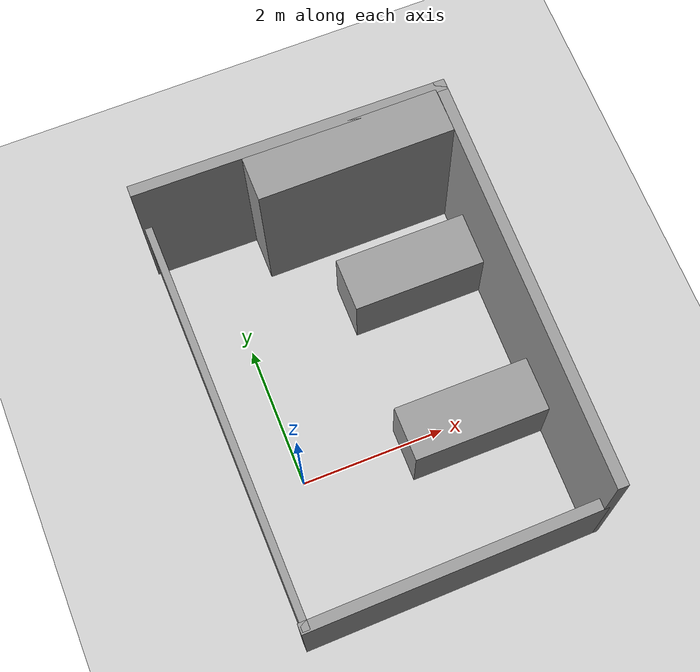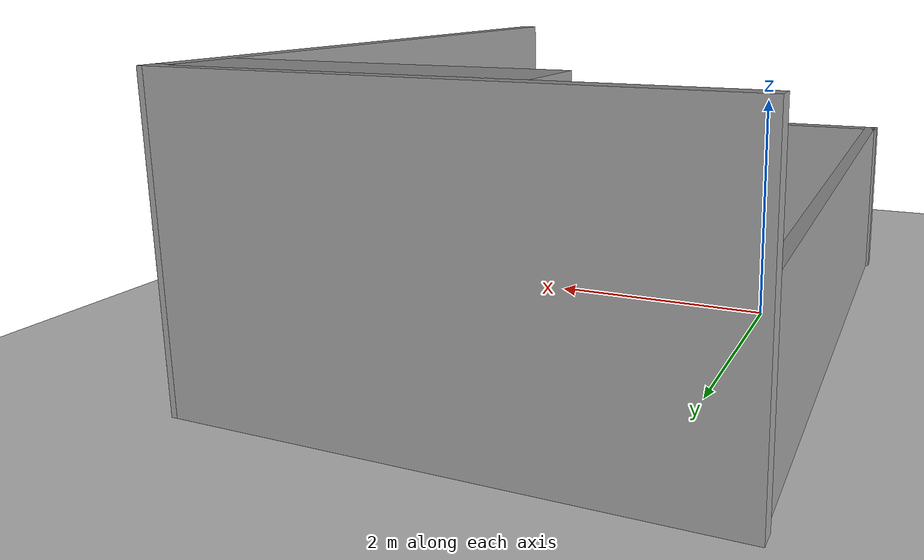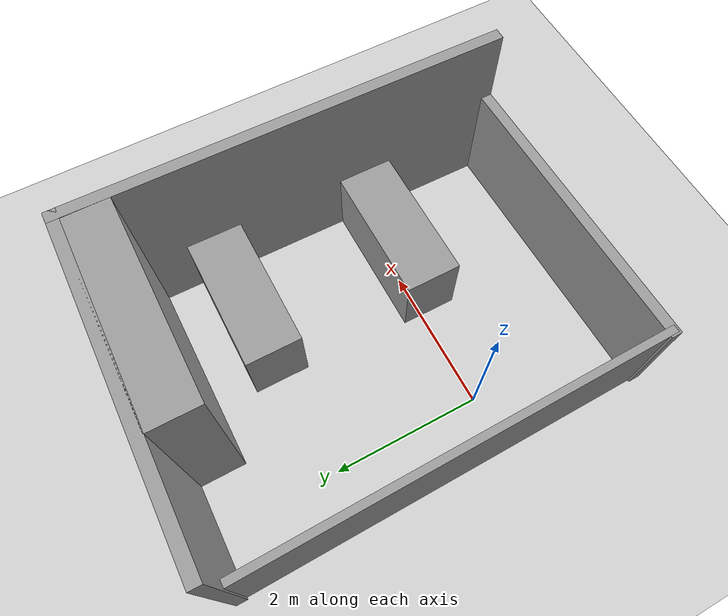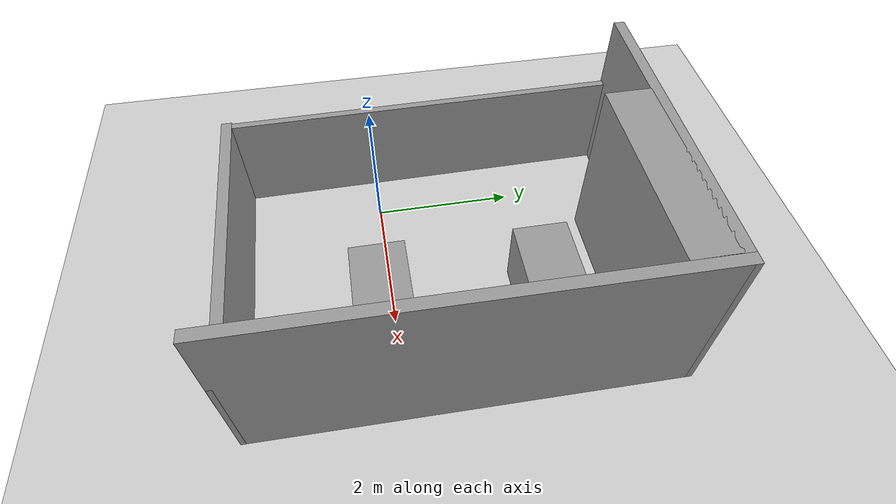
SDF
<sdf version="1.7">
 <world name="default">
  <light name="sun" type="directional">
   <pose>0 0 10 0 -0 0</pose>
   <diffuse>0.8 0.8 0.8 1</diffuse>
   <specular>0.2 0.2 0.2 1</specular>
   <attenuation>
    <range>1000</range>
    <constant>0.9</constant>
    <linear>0.01</linear>
    <quadratic>0.001</quadratic>
   </attenuation>
   <direction>-0.5 0.1 -0.9</direction>
   <spot><inner_angle>0</inner_angle><outer_angle>0</outer_angle><falloff>0</falloff></spot>
  </light>
  <model name="ground_plane">
   <static>1</static>
   <link name="link">
    <collision name="collision">
     <geometry><plane><normal>0 0 1</normal><size>100 100</size></plane></geometry>
     <surface>
      <contact><collide_bitmask>65535</collide_bitmask></contact>
      <friction><ode><mu>100</mu><mu2>50</mu2></ode></friction>
     </surface>
    </collision>
    <visual name="visual">
     <cast_shadows>0</cast_shadows>
     <geometry><plane><normal>0 0 1</normal><size>100 100</size></plane></geometry>
     <material>
      <script><uri>file://media/materials/scripts/gazebo.material</uri><name>Gazebo/Grey</name></script>
     </material>
    </visual>
   </link>
  </model>
  <gravity>0 0 -9.8</gravity>
  <magnetic_field>6e-06 2.3e-05 -4.2e-05</magnetic_field>
  <atmosphere type="adiabatic"/>
  <physics type="ode">
   <max_step_size>0.001</max_step_size>
   <real_time_factor>1</real_time_factor>
   <real_time_update_rate>1000</real_time_update_rate>
  </physics>
  <scene><ambient>0.4 0.4 0.4 1</ambient><background>0.7 0.7 0.7 1</background><shadows>1</shadows></scene>
  <spherical_coordinates>
   <surface_model>EARTH_WGS84</surface_model>
   <latitude_deg>0</latitude_deg>
   <longitude_deg>0</longitude_deg>
   <elevation>0</elevation>
   <heading_deg>0</heading_deg>
  </spherical_coordinates>
  <model name="ic.world">
   <pose>1.31427 0.823948 0 0 -0 0</pose>
   <link name="Wall_0">
    <collision name="Wall_0_Collision">
     <geometry><box><size>4.15299 0.15 1.5</size></box></geometry>
     <pose>0 0 0.75 0 -0 0</pose>
    </collision>
    <visual name="Wall_0_Visual">
     <pose>0 0 0.75 0 -0 0</pose>
     <geometry><box><size>4.15299 0.15 1.5</size></box></geometry>
     <material>
      <script><uri>file://media/materials/scripts/gazebo.material</uri><name>Gazebo/Grey</name></script>
      <ambient>1 1 1 1</ambient>
     </material>
     <meta><layer>0</layer></meta>
    </visual>
    <pose>4.6e-05 -2.82596 0 0 -0 0.013739</pose>
   </link>
   <link name="Wall_1">
    <collision name="Wall_1_Collision">
     <geometry><box><size>5.75014 0.15 2.5</size></box></geometry>
     <pose>0 0 1.25 0 -0 0</pose>
    </collision>
    <visual name="Wall_1_Visual">
     <pose>0 0 1.25 0 -0 0</pose>
     <geometry><box><size>5.75014 0.15 2.5</size></box></geometry>
     <material>
      <script><uri>file://media/materials/scripts/gazebo.material</uri><name>Gazebo/Grey</name></script>
      <ambient>1 1 1 1</ambient>
     </material>
     <meta><layer>0</layer></meta>
    </visual>
    <pose>2.0315 0.001488 0 0 -0 1.5601</pose>
   </link>
   <link name="Wall_2">
    <collision name="Wall_2_Collision">
     <geometry><box><size>4.27327 0.15 2.5</size></box></geometry>
     <pose>0 0 1.25 0 -0 0</pose>
    </collision>
    <visual name="Wall_2_Visual">
     <pose>0 0 1.25 0 -0 0</pose>
     <geometry><box><size>4.27327 0.15 2.5</size></box></geometry>
     <material>
      <script><uri>file://media/materials/scripts/gazebo.material</uri><name>Gazebo/Grey</name></script>
      <ambient>1 1 1 1</ambient>
     </material>
     <meta><layer>0</layer></meta>
    </visual>
    <pose>-0 2.82749 0 0 -0 3.12896</pose>
   </link>
   <link name="Wall_3">
    <collision name="Wall_3_Collision">
     <geometry><box><size>5.80715 0.1 1.5</size></box></geometry>
     <pose>0 0 0.75 0 -0 0</pose>
    </collision>
    <visual name="Wall_3_Visual">
     <pose>0 0 0.75 0 -0 0</pose>
     <geometry><box><size>5.80715 0.1 1.5</size></box></geometry>
     <material>
      <script><uri>file://media/materials/scripts/gazebo.material</uri><name>Gazebo/Grey</name></script>
      <ambient>1 1 1 1</ambient>
     </material>
     <meta><layer>0</layer></meta>
    </visual>
    <pose>-2.03145 3.9e-05 0 0 -0 -1.56028</pose>
   </link>
   <link name="Wall_5">
    <collision name="Wall_5_Collision">
     <geometry><box><size>2.648 0.62 2.5</size></box></geometry>
     <pose>0 0 1.25 0 -0 0</pose>
    </collision>
    <visual name="Wall_5_Visual">
     <pose>0 0 1.25 0 -0 0</pose>
     <geometry><box><size>2.648 0.62 2.5</size></box></geometry>
     <material>
      <script><uri>file://media/materials/scripts/gazebo.material</uri><name>Gazebo/Grey</name></script>
      <ambient>1 1 1 1</ambient>
     </material>
     <meta><layer>0</layer></meta>
    </visual>
    <pose>0.656546 2.46154 0 0 -0 3.14159</pose>
   </link>
   <link name="Wall_7">
    <collision name="Wall_7_Collision">
     <geometry><box><size>1.87 0.75 1</size></box></geometry>
     <pose>0 0 0.5 0 -0 0</pose>
    </collision>
    <visual name="Wall_7_Visual">
     <pose>0 0 0.5 0 -0 0</pose>
     <geometry><box><size>1.87 0.75 1</size></box></geometry>
     <material>
      <script><uri>file://media/materials/scripts/gazebo.material</uri><name>Gazebo/Grey</name></script>
      <ambient>1 1 1 1</ambient>
     </material>
     <meta><layer>0</layer></meta>
    </visual>
    <pose>1.01055 -0.949461 0 0 -0 3.14159</pose>
   </link>
   <link name="Wall_9">
    <collision name="Wall_9_Collision">
     <geometry><box><size>1.87 0.75 1</size></box></geometry>
     <pose>0 0 0.5 0 -0 0</pose>
    </collision>
    <visual name="Wall_9_Visual">
     <pose>0 0 0.5 0 -0 0</pose>
     <geometry><box><size>1.87 0.75 1</size></box></geometry>
     <material>
      <script><uri>file://media/materials/scripts/gazebo.material</uri><name>Gazebo/Grey</name></script>
      <ambient>1 1 1 1</ambient>
     </material>
     <meta><layer>0</layer></meta>
    </visual>
    <pose>1.06255 1.26054 0 0 -0 3.14159</pose>
   </link>
   <static>1</static>
  </model>
 </world>
</sdf>
